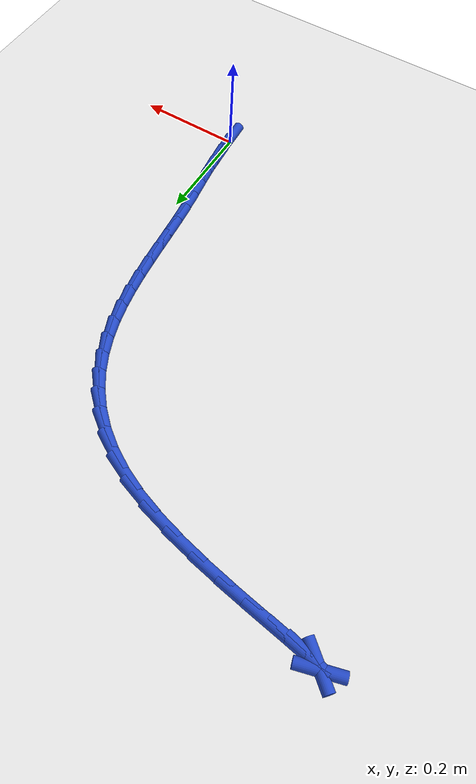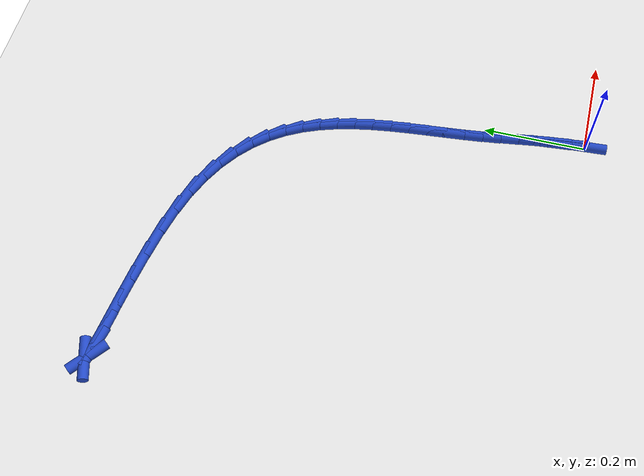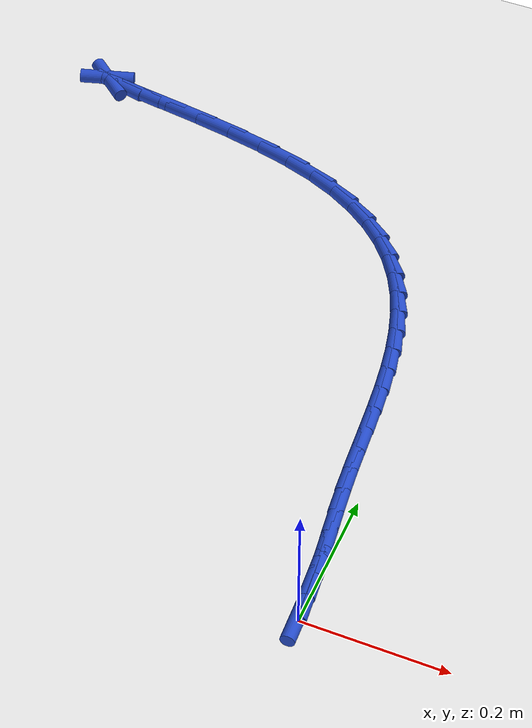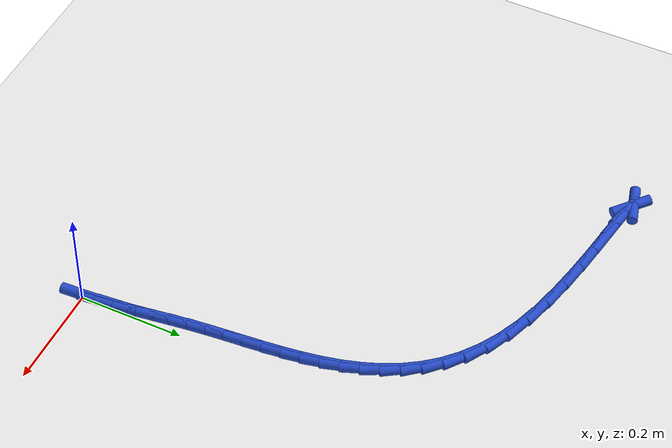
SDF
<sdf version="1.6">
 <world name="default">
  <model name="ground_plane">
   <static>1</static>
   <link name="link">
    <collision name="collision">
     <geometry><plane><normal>0 0 1</normal><size>100 100</size></plane></geometry>
     <surface><friction><ode><mu>100</mu><mu2>50</mu2></ode></friction></surface>
    </collision>
    <visual name="visual">
     <cast_shadows>0</cast_shadows>
     <geometry><plane><normal>0 0 1</normal><size>100 100</size></plane></geometry>
     <material>
      <script><uri>file://media/materials/scripts/gazebo.material</uri><name>Gazebo/WhiteGlow</name></script>
     </material>
    </visual>
   </link>
  </model>
  <model name="line">
   <link name="link_1">
    <pose>-0.001735479493979407 0.03447128723011486 0.01 0 1.57 -1.479673301218593</pose>
    <collision name="collision">
     <geometry><cylinder><radius>0.01</radius><length>0.08</length></cylinder></geometry>
    </collision>
    <visual name="visual">
     <material>
      <script><name>Gazebo/Blue</name><uri>file://media/materials/scripts/gazebo.material</uri></script>
     </material>
     <geometry><cylinder><radius>0.01</radius><length>0.08</length></cylinder></geometry>
    </visual>
   </link>
   <link name="link_2">
    <pose>-0.0048575214507185546 0.06863823851478291 0.01 0 1.57 -1.4508611386593357</pose>
    <collision name="collision">
     <geometry><cylinder><radius>0.01</radius><length>0.08</length></cylinder></geometry>
    </collision>
    <visual name="visual">
     <material>
      <script><name>Gazebo/Blue</name><uri>file://media/materials/scripts/gazebo.material</uri></script>
     </material>
     <geometry><cylinder><radius>0.01</radius><length>0.08</length></cylinder></geometry>
    </visual>
   </link>
   <link name="link_3">
    <pose>-0.008958672551936508 0.10266885133756623 0.01 0 1.57 -1.4344630769436928</pose>
    <collision name="collision">
     <geometry><cylinder><radius>0.01</radius><length>0.08</length></cylinder></geometry>
    </collision>
    <visual name="visual">
     <material>
      <script><name>Gazebo/Blue</name><uri>file://media/materials/scripts/gazebo.material</uri></script>
     </material>
     <geometry><cylinder><radius>0.01</radius><length>0.08</length></cylinder></geometry>
    </visual>
   </link>
   <link name="link_4">
    <pose>-0.01363147947935231 0.1367311231820268 0.01 0 1.57 -1.4305458210199569</pose>
    <collision name="collision">
     <geometry><cylinder><radius>0.01</radius><length>0.08</length></cylinder></geometry>
    </collision>
    <visual name="visual">
     <material>
      <script><name>Gazebo/Blue</name><uri>file://media/materials/scripts/gazebo.material</uri></script>
     </material>
     <geometry><cylinder><radius>0.01</radius><length>0.08</length></cylinder></geometry>
    </visual>
   </link>
   <link name="link_5">
    <pose>-0.01846848891468505 0.17099305153172664 0.01 0 1.57 -1.4389121505210567</pose>
    <collision name="collision">
     <geometry><cylinder><radius>0.01</radius><length>0.08</length></cylinder></geometry>
    </collision>
    <visual name="visual">
     <material>
      <script><name>Gazebo/Blue</name><uri>file://media/materials/scripts/gazebo.material</uri></script>
     </material>
     <geometry><cylinder><radius>0.01</radius><length>0.08</length></cylinder></geometry>
    </visual>
   </link>
   <link name="link_6">
    <pose>-0.02306224753965377 0.2056226338702279 0.01 0 1.57 -1.458576324803985</pose>
    <collision name="collision">
     <geometry><cylinder><radius>0.01</radius><length>0.08</length></cylinder></geometry>
    </collision>
    <visual name="visual">
     <material>
      <script><name>Gazebo/Blue</name><uri>file://media/materials/scripts/gazebo.material</uri></script>
     </material>
     <geometry><cylinder><radius>0.01</radius><length>0.08</length></cylinder></geometry>
    </visual>
   </link>
   <link name="link_7">
    <pose>-0.027024161167521904 0.24077918663455944 0.01 0 1.57 -1.4773469398750507</pose>
    <collision name="collision">
     <geometry><cylinder><radius>0.01</radius><length>0.08</length></cylinder></geometry>
    </collision>
    <visual name="visual">
     <material>
      <script><name>Gazebo/Blue</name><uri>file://media/materials/scripts/gazebo.material</uri></script>
     </material>
     <geometry><cylinder><radius>0.01</radius><length>0.08</length></cylinder></geometry>
    </visual>
   </link>
   <link name="link_8">
    <pose>-0.03036615780373676 0.27643766189800995 0.01 0 1.57 -1.4843336633599877</pose>
    <collision name="collision">
     <geometry><cylinder><radius>0.01</radius><length>0.08</length></cylinder></geometry>
    </collision>
    <visual name="visual">
     <material>
      <script><name>Gazebo/Blue</name><uri>file://media/materials/scripts/gazebo.material</uri></script>
     </material>
     <geometry><cylinder><radius>0.01</radius><length>0.08</length></cylinder></geometry>
    </visual>
   </link>
   <link name="link_9">
    <pose>-0.03348304873295362 0.3123967667378714 0.01 0 1.57 -1.4794617246746493</pose>
    <collision name="collision">
     <geometry><cylinder><radius>0.01</radius><length>0.08</length></cylinder></geometry>
    </collision>
    <visual name="visual">
     <material>
      <script><name>Gazebo/Blue</name><uri>file://media/materials/scripts/gazebo.material</uri></script>
     </material>
     <geometry><cylinder><radius>0.01</radius><length>0.08</length></cylinder></geometry>
    </visual>
   </link>
   <link name="link_10">
    <pose>-0.036784974345309765 0.34844815209114216 0.01 0 1.57 -1.4627708480427988</pose>
    <collision name="collision">
     <geometry><cylinder><radius>0.01</radius><length>0.08</length></cylinder></geometry>
    </collision>
    <visual name="visual">
     <material>
      <script><name>Gazebo/Blue</name><uri>file://media/materials/scripts/gazebo.material</uri></script>
     </material>
     <geometry><cylinder><radius>0.01</radius><length>0.08</length></cylinder></geometry>
    </visual>
   </link>
   <link name="link_11">
    <pose>-0.04068207503094241 0.3843834688948197 0.01 0 1.57 -1.4339900800196281</pose>
    <collision name="collision">
     <geometry><cylinder><radius>0.01</radius><length>0.08</length></cylinder></geometry>
    </collision>
    <visual name="visual">
     <material>
      <script><name>Gazebo/Blue</name><uri>file://media/materials/scripts/gazebo.material</uri></script>
     </material>
     <geometry><cylinder><radius>0.01</radius><length>0.08</length></cylinder></geometry>
    </visual>
   </link>
   <link name="link_12">
    <pose>-0.04558449117998885 0.41999436808590285 0.01 0 1.57 -1.3925982356423274</pose>
    <collision name="collision">
     <geometry><cylinder><radius>0.01</radius><length>0.08</length></cylinder></geometry>
    </collision>
    <visual name="visual">
     <material>
      <script><name>Gazebo/Blue</name><uri>file://media/materials/scripts/gazebo.material</uri></script>
     </material>
     <geometry><cylinder><radius>0.01</radius><length>0.08</length></cylinder></geometry>
    </visual>
   </link>
   <link name="link_13">
    <pose>-0.0519023631825863 0.4550725006013891 0.01 0 1.57 -1.3379356022408442</pose>
    <collision name="collision">
     <geometry><cylinder><radius>0.01</radius><length>0.08</length></cylinder></geometry>
    </collision>
    <visual name="visual">
     <material>
      <script><name>Gazebo/Blue</name><uri>file://media/materials/scripts/gazebo.material</uri></script>
     </material>
     <geometry><cylinder><radius>0.01</radius><length>0.08</length></cylinder></geometry>
    </visual>
   </link>
   <link name="link_14">
    <pose>-0.060045831428872015 0.4894095173782768 0.01 0 1.57 -1.2693966756595008</pose>
    <collision name="collision">
     <geometry><cylinder><radius>0.01</radius><length>0.08</length></cylinder></geometry>
    </collision>
    <visual name="visual">
     <material>
      <script><name>Gazebo/Blue</name><uri>file://media/materials/scripts/gazebo.material</uri></script>
     </material>
     <geometry><cylinder><radius>0.01</radius><length>0.08</length></cylinder></geometry>
    </visual>
   </link>
   <link name="link_15">
    <pose>-0.07042503630898328 0.5227970693535642 0.01 0 1.57 -1.1867326069188164</pose>
    <collision name="collision">
     <geometry><cylinder><radius>0.01</radius><length>0.08</length></cylinder></geometry>
    </collision>
    <visual name="visual">
     <material>
      <script><name>Gazebo/Blue</name><uri>file://media/materials/scripts/gazebo.material</uri></script>
     </material>
     <geometry><cylinder><radius>0.01</radius><length>0.08</length></cylinder></geometry>
    </visual>
   </link>
   <link name="link_16">
    <pose>-0.08345011821305734 0.555026807464249 0.01 0 1.57 -1.0904602188475492</pose>
    <collision name="collision">
     <geometry><cylinder><radius>0.01</radius><length>0.08</length></cylinder></geometry>
    </collision>
    <visual name="visual">
     <material>
      <script><name>Gazebo/Blue</name><uri>file://media/materials/scripts/gazebo.material</uri></script>
     </material>
     <geometry><cylinder><radius>0.01</radius><length>0.08</length></cylinder></geometry>
    </visual>
   </link>
   <link name="link_17">
    <pose>-0.09953121753123144 0.5858903826473296 0.01 0 1.57 -0.9822924305343443</pose>
    <collision name="collision">
     <geometry><cylinder><radius>0.01</radius><length>0.08</length></cylinder></geometry>
    </collision>
    <visual name="visual">
     <material>
      <script><name>Gazebo/Blue</name><uri>file://media/materials/scripts/gazebo.material</uri></script>
     </material>
     <geometry><cylinder><radius>0.01</radius><length>0.08</length></cylinder></geometry>
    </visual>
   </link>
   <link name="link_18">
    <pose>-0.11907847465364275 0.6151794458398039 0.01 0 1.57 -0.865389421273225</pose>
    <collision name="collision">
     <geometry><cylinder><radius>0.01</radius><length>0.08</length></cylinder></geometry>
    </collision>
    <visual name="visual">
     <material>
      <script><name>Gazebo/Blue</name><uri>file://media/materials/scripts/gazebo.material</uri></script>
     </material>
     <geometry><cylinder><radius>0.01</radius><length>0.08</length></cylinder></geometry>
    </visual>
   </link>
   <link name="link_19">
    <pose>-0.14250202997042866 0.6426856479786699 0.01 0 1.57 -0.7441814541535273</pose>
    <collision name="collision">
     <geometry><cylinder><radius>0.01</radius><length>0.08</length></cylinder></geometry>
    </collision>
    <visual name="visual">
     <material>
      <script><name>Gazebo/Blue</name><uri>file://media/materials/scripts/gazebo.material</uri></script>
     </material>
     <geometry><cylinder><radius>0.01</radius><length>0.08</length></cylinder></geometry>
    </visual>
   </link>
   <link name="link_20">
    <pose>-0.17021202387172635 0.6682006400009259 0.01 0 1.57 -0.6236713893944895</pose>
    <collision name="collision">
     <geometry><cylinder><radius>0.01</radius><length>0.08</length></cylinder></geometry>
    </collision>
    <visual name="visual">
     <material>
      <script><name>Gazebo/Blue</name><uri>file://media/materials/scripts/gazebo.material</uri></script>
     </material>
     <geometry><cylinder><radius>0.01</radius><length>0.08</length></cylinder></geometry>
    </visual>
   </link>
   <link name="link_21">
    <pose>-0.2026185967476731 0.6915160728435703 0.01 0 1.57 -0.5084583369444287</pose>
    <collision name="collision">
     <geometry><cylinder><radius>0.01</radius><length>0.08</length></cylinder></geometry>
    </collision>
    <visual name="visual">
     <material>
      <script><name>Gazebo/Blue</name><uri>file://media/materials/scripts/gazebo.material</uri></script>
     </material>
     <geometry><cylinder><radius>0.01</radius><length>0.08</length></cylinder></geometry>
    </visual>
   </link>
   <link name="link_22">
    <pose>-0.2401318889884062 0.7124235974436004 0.01 0 1.57 -0.4019386086303714</pose>
    <collision name="collision">
     <geometry><cylinder><radius>0.01</radius><length>0.08</length></cylinder></geometry>
    </collision>
    <visual name="visual">
     <material>
      <script><name>Gazebo/Blue</name><uri>file://media/materials/scripts/gazebo.material</uri></script>
     </material>
     <geometry><cylinder><radius>0.01</radius><length>0.08</length></cylinder></geometry>
    </visual>
   </link>
   <link name="link_23">
    <pose>-0.2831620409840629 0.7307148647380151 0.01 0 1.57 -0.3074265537504486</pose>
    <collision name="collision">
     <geometry><cylinder><radius>0.01</radius><length>0.08</length></cylinder></geometry>
    </collision>
    <visual name="visual">
     <material>
      <script><name>Gazebo/Blue</name><uri>file://media/materials/scripts/gazebo.material</uri></script>
     </material>
     <geometry><cylinder><radius>0.01</radius><length>0.08</length></cylinder></geometry>
    </visual>
   </link>
   <link name="link_24">
    <pose>-0.3319629842435244 0.7462087898786549 0.01 0 1.57 -0.23759141025009395</pose>
    <collision name="collision">
     <geometry><cylinder><radius>0.01</radius><length>0.08</length></cylinder></geometry>
    </collision>
    <visual name="visual">
     <material>
      <script><name>Gazebo/Blue</name><uri>file://media/materials/scripts/gazebo.material</uri></script>
     </material>
     <geometry><cylinder><radius>0.01</radius><length>0.08</length></cylinder></geometry>
    </visual>
   </link>
   <link name="link_25">
    <pose>-0.3849614954309004 0.7590431939709723 0.01 0 1.57 -0.19088101204137153</pose>
    <collision name="collision">
     <geometry><cylinder><radius>0.01</radius><length>0.08</length></cylinder></geometry>
    </collision>
    <visual name="visual">
     <material>
      <script><name>Gazebo/Blue</name><uri>file://media/materials/scripts/gazebo.material</uri></script>
     </material>
     <geometry><cylinder><radius>0.01</radius><length>0.08</length></cylinder></geometry>
    </visual>
   </link>
   <link name="link_26">
    <pose>-0.43940018881852533 0.7695625781606259 0.01 0 1.57 -0.15968537976516559</pose>
    <collision name="collision">
     <geometry><cylinder><radius>0.01</radius><length>0.08</length></cylinder></geometry>
    </collision>
    <visual name="visual">
     <material>
      <script><name>Gazebo/Blue</name><uri>file://media/materials/scripts/gazebo.material</uri></script>
     </material>
     <geometry><cylinder><radius>0.01</radius><length>0.08</length></cylinder></geometry>
    </visual>
   </link>
   <link name="link_27">
    <pose>-0.49250170075054456 0.7781149304790502 0.01 0 1.57 -0.14059987725914058</pose>
    <collision name="collision">
     <geometry><cylinder><radius>0.01</radius><length>0.08</length></cylinder></geometry>
    </collision>
    <visual name="visual">
     <material>
      <script><name>Gazebo/Blue</name><uri>file://media/materials/scripts/gazebo.material</uri></script>
     </material>
     <geometry><cylinder><radius>0.01</radius><length>0.08</length></cylinder></geometry>
    </visual>
   </link>
   <link name="link_28">
    <pose>-0.5414886675711043 0.7850482389576805 0.01 0 1.57 -0.1337085500804472</pose>
    <collision name="collision">
     <geometry><cylinder><radius>0.01</radius><length>0.08</length></cylinder></geometry>
    </collision>
    <visual name="visual">
     <material>
      <script><name>Gazebo/Blue</name><uri>file://media/materials/scripts/gazebo.material</uri></script>
     </material>
     <geometry><cylinder><radius>0.01</radius><length>0.08</length></cylinder></geometry>
    </visual>
   </link>
   <link name="link_29">
    <pose>-0.5835837256243501 0.7907104916279513 0.01 0 1.57 -0.14512727659500194</pose>
    <collision name="collision">
     <geometry><cylinder><radius>0.01</radius><length>0.08</length></cylinder></geometry>
    </collision>
    <visual name="visual">
     <material>
      <script><name>Gazebo/Blue</name><uri>file://media/materials/scripts/gazebo.material</uri></script>
     </material>
     <geometry><cylinder><radius>0.01</radius><length>0.08</length></cylinder></geometry>
    </visual>
   </link>
   <link name="link_30">
    <pose>-0.6160095112544279 0.7954496765212976 0.01 0 1.57 -0.20548088603850004</pose>
    <collision name="collision">
     <geometry><cylinder><radius>0.01</radius><length>0.08</length></cylinder></geometry>
    </collision>
    <visual name="visual">
     <material>
      <script><name>Gazebo/Blue</name><uri>file://media/materials/scripts/gazebo.material</uri></script>
     </material>
     <geometry><cylinder><radius>0.01</radius><length>0.08</length></cylinder></geometry>
    </visual>
   </link>
   <link name="link_31">
    <pose>-0.6359886608054834 0.7996137816691546 0.01 0 1.57 -0.691551199999225</pose>
    <collision name="collision">
     <geometry><cylinder><radius>0.01</radius><length>0.08</length></cylinder></geometry>
    </collision>
    <visual name="visual">
     <material>
      <script><name>Gazebo/Blue</name><uri>file://media/materials/scripts/gazebo.material</uri></script>
     </material>
     <geometry><cylinder><radius>0.01</radius><length>0.08</length></cylinder></geometry>
    </visual>
   </link>
   <link name="link_32">
    <pose>-0.6407438106216622 0.8035507951029567 0.01 0 1.57 0.29726757542603127</pose>
    <collision name="collision">
     <geometry><cylinder><radius>0.01</radius><length>0.08</length></cylinder></geometry>
    </collision>
    <visual name="visual">
     <material>
      <script><name>Gazebo/Blue</name><uri>file://media/materials/scripts/gazebo.material</uri></script>
     </material>
     <geometry><cylinder><radius>0.01</radius><length>0.08</length></cylinder></geometry>
    </visual>
   </link>
   <link name="link_280">
    <pose>3.469446951953614e-18 8.326672684688674e-17 0.01 0 1.57 -1.517699581612252</pose>
    <collision name="collision">
     <geometry><cylinder><radius>0.01</radius><length>0.08</length></cylinder></geometry>
    </collision>
    <visual name="visual">
     <material>
      <script><name>Gazebo/Blue</name><uri>file://media/materials/scripts/gazebo.material</uri></script>
     </material>
     <geometry><cylinder><radius>0.01</radius><length>0.08</length></cylinder></geometry>
    </visual>
   </link>
   <link name="link_281">
    <pose>-0.0018281628629125734 0.03439842703812153 0.01 0 1.57 -1.4592244815428679</pose>
    <collision name="collision">
     <geometry><cylinder><radius>0.01</radius><length>0.08</length></cylinder></geometry>
    </collision>
    <visual name="visual">
     <material>
      <script><name>Gazebo/Blue</name><uri>file://media/materials/scripts/gazebo.material</uri></script>
     </material>
     <geometry><cylinder><radius>0.01</radius><length>0.08</length></cylinder></geometry>
    </visual>
   </link>
   <link name="link_282">
    <pose>-0.005598988402183906 0.06805535697883629 0.01 0 1.57 -1.4887101047313605</pose>
    <collision name="collision">
     <geometry><cylinder><radius>0.01</radius><length>0.08</length></cylinder></geometry>
    </collision>
    <visual name="visual">
     <material>
      <script><name>Gazebo/Blue</name><uri>file://media/materials/scripts/gazebo.material</uri></script>
     </material>
     <geometry><cylinder><radius>0.01</radius><length>0.08</length></cylinder></geometry>
    </visual>
   </link>
  </model>
 </world>
</sdf>
